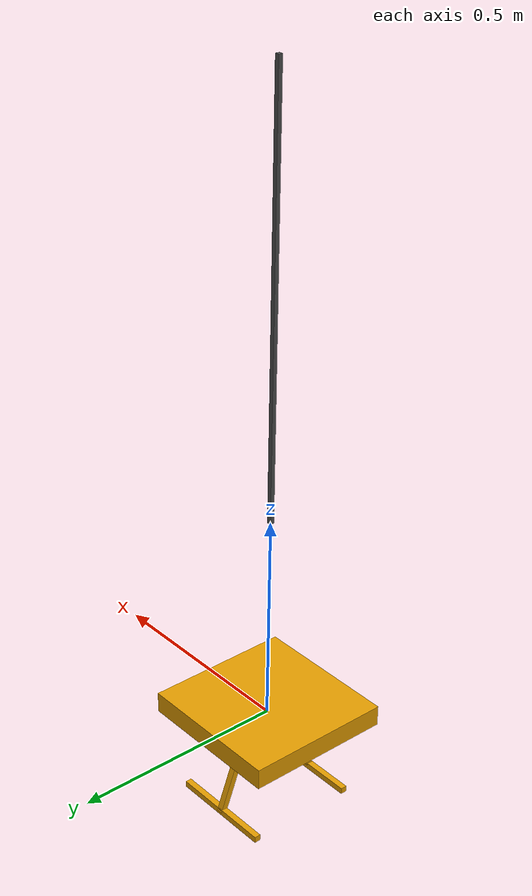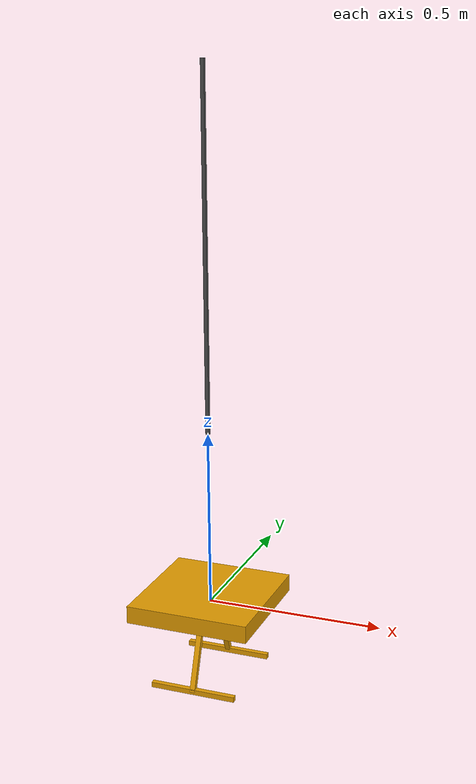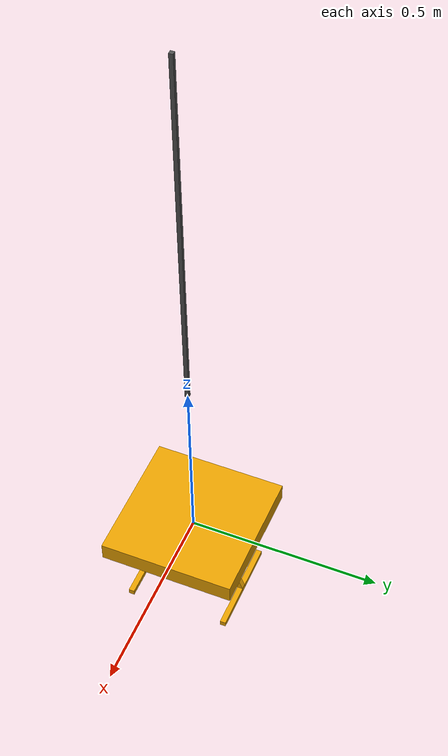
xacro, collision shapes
<?xml version="1.0" ?>
<robot xmlns:xacro="http://www.ros.org/wiki/xacro" name="x500">
  <xacro:property name="x500_mesh_package" value="clover2_description" />
  <xacro:property name="x500_mesh_root" value="models/x500_base/meshes" />
  <xacro:property name="x500_base_mass" value="2.0" />
  <xacro:property name="x500_rotor_mass" value="0.016076923076923075" />
  <xacro:property name="x500_arm_half" value="0.174" />
  <xacro:property name="x500_rotor_z" value="0.06" />
  <xacro:property name="x500_prop_scale" value="0.8461538461538461" />
  <xacro:property name="x500_rotor_ixx" value="3.8464910483993325e-07" />
  <xacro:property name="x500_rotor_iyy" value="2.6115851691700804e-05" />
  <xacro:property name="x500_rotor_izz" value="2.649858234714004e-05" />
  <xacro:property
        name="x500_collision_box"
        value="0.2792307692307692 0.016923076923076923 0.0008461538461538462"
    />
  <xacro:property
        name="x500_prop_visual_xyz"
        value="-0.022 -0.14638461538461536 -0.016"
    />

  <xacro:include
        filename="$(find clover2_description)/xacro/robots/x500/x500_base.xacro"
    />
  <xacro:include
        filename="$(find clover2_description)/xacro/sensors/camera_macro.xacro"
    />

  <xacro:x500_base_link />

  <xacro:camera_module name="main_camera" parent="base_link">
    <origin xyz="0 0 1" rpy="0 0 0" />
  </xacro:camera_module>

</robot>

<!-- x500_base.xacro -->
<robot xmlns:xacro="http://www.ros.org/wiki/xacro">
  <xacro:macro name="x500_base_link">
    <link name="base_link">
      <inertial>
        <origin xyz="0 0 0" rpy="0 0 0" />
        <mass value="${x500_base_mass}" />
        <inertia
                    ixx="0.02166666666666667"
                    ixy="0"
                    ixz="0"
                    iyy="0.02166666666666667"
                    iyz="0"
                    izz="0.04000000000000001"
                />
      </inertial>
      <visual>
        <origin xyz="0 0 0.025" rpy="0 0 3.141592654" />
        <geometry>
          <mesh
                        filename="package://clover2_description/${x500_mesh_root}/NXP-HGD-CF.dae"
                        scale="1 1 1"
                    />
        </geometry>
      </visual>
      <visual>
        <origin xyz="0.174 0.174 0.032" rpy="0 0 -0.45" />
        <geometry>
          <mesh
                        filename="package://clover2_description/${x500_mesh_root}/5010Base.dae"
                        scale="1 1 1"
                    />
        </geometry>
      </visual>
      <visual>
        <origin xyz="-0.174 0.174 0.032" rpy="0 0 -0.45" />
        <geometry>
          <mesh
                        filename="package://clover2_description/${x500_mesh_root}/5010Base.dae"
                        scale="1 1 1"
                    />
        </geometry>
      </visual>
      <visual>
        <origin xyz="0.174 -0.174 0.032" rpy="0 0 -0.45" />
        <geometry>
          <mesh
                        filename="package://clover2_description/${x500_mesh_root}/5010Base.dae"
                        scale="1 1 1"
                    />
        </geometry>
      </visual>
      <visual>
        <origin xyz="-0.174 -0.174 0.032" rpy="0 0 -0.45" />
        <geometry>
          <mesh
                        filename="package://clover2_description/${x500_mesh_root}/5010Base.dae"
                        scale="1 1 1"
                    />
        </geometry>
      </visual>
      <collision>
        <origin xyz="0 0 0.007" rpy="0 0 0" />
        <geometry>
          <box size="0.35355339059327373 0.35355339059327373 0.05" />
        </geometry>
      </collision>
      <collision>
        <origin xyz="0 -0.098 -0.123" rpy="-0.35 0 0" />
        <geometry>
          <box size="0.015 0.015 0.21" />
        </geometry>
      </collision>
      <collision>
        <origin xyz="0 0.098 -0.123" rpy="0.35 0 0" />
        <geometry>
          <box size="0.015 0.015 0.21" />
        </geometry>
      </collision>
      <collision>
        <origin xyz="0 -0.132 -0.2195" rpy="0 0 0" />
        <geometry>
          <box size="0.25 0.015 0.015" />
        </geometry>
      </collision>
      <collision>
        <origin xyz="0 0.132 -0.2195" rpy="0 0 0" />
        <geometry>
          <box size="0.25 0.015 0.015" />
        </geometry>
      </collision>
    </link>
  </xacro:macro>
</robot>

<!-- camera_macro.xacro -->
<robot xmlns:xacro="http://www.ros.org/wiki/xacro">

  <xacro:include
        filename="$(find clover2_description)/xacro/macros/inertial.xacro"
    />

  <xacro:macro
        name="camera_module"
        params="
            name
            parent
            name_prefix:=''
            width:=0.01
            height:=0.01
            depth:=1
            mass:=1
            image_w:=640
            image_h:=480
            hfov:=2.0943951023931953
            update_rate:=30
            mesh_file:='file://$(find clover2_description)/meshes/sensors/camera.stl'
            *origin
        "
    >

    <xacro:property name="camera_link" value="${name_prefix}${name}" />
    <xacro:property name="camera_joint" value="${name_prefix}${name}_joint" />

    <link name="${camera_link}">
      <visual>
        <xacro:if value="${mesh_file == ''}">
          <geometry>
            <box size="${width} ${height} ${depth}" />
          </geometry>
        </xacro:if>
        <xacro:unless value="${mesh_file == ''}">
          <geometry>
            <mesh filename="${mesh_file}" />
          </geometry>
        </xacro:unless>
        <material name="dark_grey" />
      </visual>
      <collision>
        <geometry>
          <box size="${width} ${height} ${depth}" />
        </geometry>
      </collision>
      <xacro:box_inertial
                mass="${mass}"
                width="${width}"
                height="${height}"
                depth="${depth}"
            >
        <origin xyz="0 0 0" rpy="0 0 0" />
      </xacro:box_inertial>
    </link>

    <joint name="${camera_joint}" type="fixed">
      <xacro:insert_block name="origin" />
      <axis xyz="0 0 1" />
      <parent link="${parent}" />
      <child link="${camera_link}" />
    </joint>

    <gazebo reference="${camera_link}">
      <sensor name="${name_prefix}${name}_rgb" type="camera">
        <camera>
          <horizontal_fov>${hfov}</horizontal_fov>
          <image>
            <width>${image_w}</width>
            <height>${image_h}</height>
            <format>R8G8B8</format>
          </image>
          <clip>
            <near>0.02</near>
            <far>3000</far>
          </clip>
        </camera>
        <always_on>true</always_on>
        <update_rate>${update_rate}</update_rate>
        <visualize>true</visualize>
      </sensor>
    </gazebo>

  </xacro:macro>

</robot>

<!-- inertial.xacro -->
<robot xmlns:xacro="http://www.ros.org/wiki/xacro">

  <xacro:macro name="box_inertial" params="mass width height depth *origin">
    <inertial>
      <xacro:insert_block name="origin" />
      <mass value="${mass}" />
      <inertia
                ixx="${mass*(height*height + depth*depth)/12}"
                iyy="${mass*(width*width + depth*depth)/12}"
                izz="${mass*(width*width + height*height)/12}"
                ixy="0.0"
                ixz="0.0"
                iyz="0.0"
            />
    </inertial>
  </xacro:macro>

  <xacro:macro name="cylinder_inertial" params="mass radius length *origin">
    <inertial>
      <xacro:insert_block name="origin" />
      <mass value="${mass}" />
      <inertia
                ixx="${mass*(3*radius*radius + length*length)/12}"
                iyy="${mass*(3*radius*radius + length*length)/12}"
                izz="${mass*radius*radius/2}"
                ixy="0.0"
                ixz="0.0"
                iyz="0.0"
            />
    </inertial>
  </xacro:macro>

  <xacro:macro name="prop_inertial" params="mass radius *origin">
    <inertial>
      <xacro:insert_block name="origin" />
      <mass value="${mass}" />
      <inertia
                ixx="${mass*radius*radius/4}"
                iyy="${mass*radius*radius/4}"
                izz="${mass*radius*radius/2}"
                ixy="0.0"
                ixz="0.0"
                iyz="0.0"
            />
    </inertial>
  </xacro:macro>

</robot>
